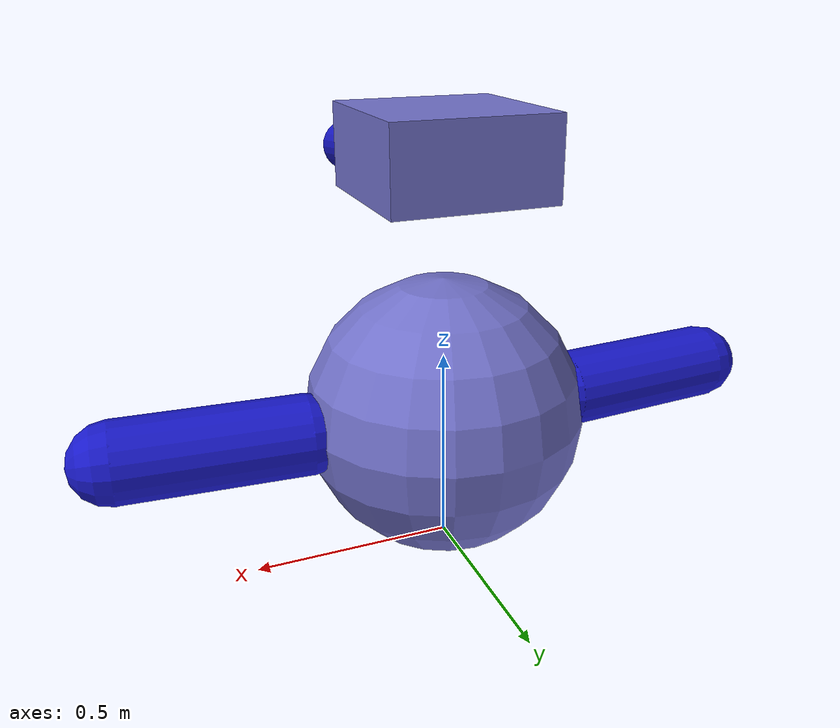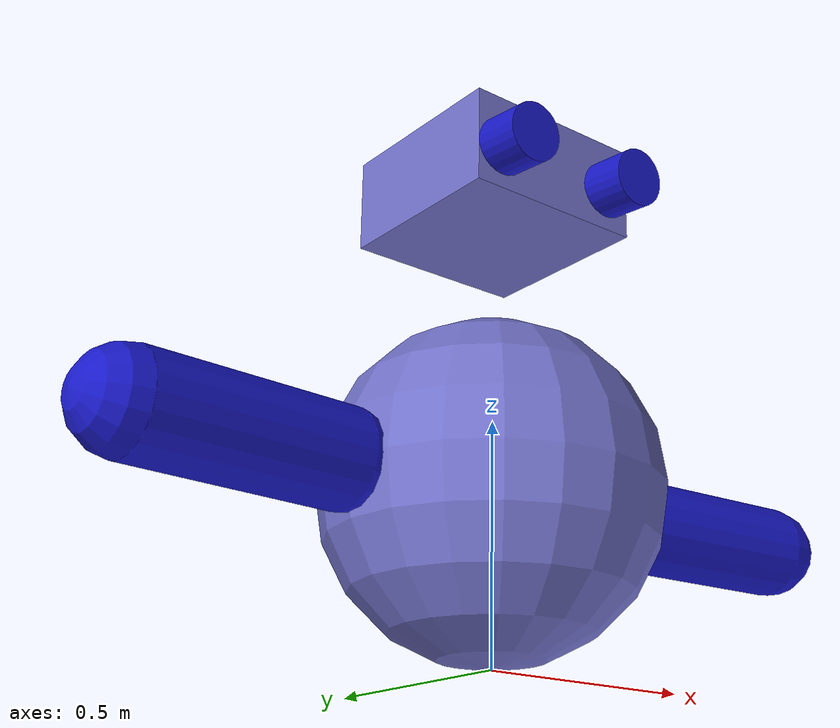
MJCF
<mujoco model="boxhead">
  <compiler boundmass="1e-05" boundinertia="1e-11" coordinate="local" angle="radian" eulerseq="xyz"/>
  <option timestep="0.005" cone="elliptic" noslip_iterations="5" noslip_tolerance="0.0"/>
  <size njmax="800" nconmax="800"/>
  <visual>
    <headlight ambient="0.40000000000000002 0.40000000000000002 0.40000000000000002" diffuse="0.80000000000000004 0.80000000000000004 0.80000000000000004" specular="0.10000000000000001 0.10000000000000001 0.10000000000000001"/>
    <map znear="0.0005"/>
    <scale forcewidth="0.01" contactwidth="0.06" contactheight="0.01" jointwidth="0.01" framelength="0.3" framewidth="0.01"/>
  </visual>
  <default>
    <default class="/">
      <mesh scale="0.01 0.01 0.01"/>
      <geom contype="1" conaffinity="1" condim="4" friction="0.5 0.02 0.02"/>
      <default class="root">
        <joint pos="0 0 0" limited="false" stiffness="0.0" armature="0.0" damping="0.0"/>
      </default>
    </default>
  </default>
  <asset>
    <material name="head_material" class="/" texture="ball_body"/>
    <texture name="ball_body" type="cube" builtin="checker" rgb1="0.10000000000000001 0.10000000000000001 0.80000000000000004" rgb2="0.80000000000000004 0.80000000000000004 0.80000000000000004" width="100" height="100"/>
    <material name="ball_body" class="/" texture="ball_body"/>
  </asset>
  <worldbody>
    <body name="head_body" pos="0 0 1" quat="1 0 0 -1">
      <camera name="float_far" class="/" fovy="90.0" pos="-4 0 2" xyaxes="0 -1 0 0.5 0 1"/>
      <body name="egocentric_camera" pos="0.1 0 0.2" xyaxes="0 -1 0 0.0995 0 0.995">
        <inertial pos="0 0 0" mass="1.0" diaginertia="1 1 1"/>
        <geom name="eye_l" class="/" type="cylinder" contype="0" conaffinity="0" size="0.06 0.05" rgba="0.1 0.1 0.8 1" mass="0.0" pos="-0.14 -0.2 -0.171"/>
        <geom name="eye_r" class="/" type="cylinder" contype="0" conaffinity="0" size="0.06 0.05" rgba="0.1 0.1 0.8 1" mass="0.0" pos="0.14 -0.2 -0.171"/>
        <camera name="egocentric" class="/" fovy="80.0"/>
      </body>
      <camera name="tracking" class="/" mode="trackcom" pos="1.5 1.5 0.69999999999999996" xyaxes="-1 1 0 -1 -1 4"/>
      <joint name="steer" class="root" type="hinge" axis="0 0 -1" damping="4.0"/>
      <geom name="top_down_cam_box" class="/" type="box" contype="0" conaffinity="0" group="5" size="1 1 0.10000000000000001" material="head_material" mass="0.0" pos="0 0 2"/>
      <geom name="head" class="/" type="box" contype="1" conaffinity="1" size="0.20000000000000001 0.20000000000000001 0.10000000000000001" material="head_material" mass="20.0" pos="0 0 0"/>
      <site name="torso_site" class="/" group="4" rgba="1 0 0 1" size="0.050000000000000003" pos="0 0 0"/>
      <body name="torso" pos="0 0 0.050000000000000003">
        <joint name="kick" class="/" type="slide" axis="0 0 -1" limited="true" solimplimit="0.94999999999999996 0.98999999999999999 0.001" stiffness="0.0" range="0 0.40000000000000002" springref="-0.4" damping="100.0"/>
        <geom name="arm_l" class="/" type="capsule" size="0.10000000000000001" rgba="0.10000000000000001 0.10000000000000001 0.80000000000000004 1" density="10.0" fromto="0 0.34999999999999998 -0.69999999999999996 0.029999999999999999 0.80000000000000004 -0.69999999999999996"/>
        <geom name="arm_r" class="/" type="capsule" size="0.10000000000000001" rgba="0.10000000000000001 0.10000000000000001 0.80000000000000004 1" density="10.0" fromto="0 -0.34999999999999998 -0.69999999999999996 0.029999999999999999 -0.80000000000000004 -0.69999999999999996"/>
        <body name="ball" pos="0 0 -0.69999999999999996">
          <joint name="roll" class="/" type="hinge" axis="0 1 0" damping="2.0"/>
          <geom name="shell" class="/" type="sphere" condim="4" size="0.34999999999999998" material="ball_body" friction="0.5 0.02 0.02" density="100.0"/>
        </body>
      </body>
    </body>
  </worldbody>
  <actuator>
    <general name="roll" class="/" ctrllimited="true" ctrlrange="-1 1" gear="-60" joint="roll" biastype="affine" biasprm="0"/>
    <motor name="steer" class="/" ctrllimited="true" ctrlrange="-1 1" gear="55" joint="steer"/>
  </actuator>
  <sensor>
    <velocimeter name="sensor_torso_vel" site="torso_site"/>
    <gyro name="sensor_torso_gyro" site="torso_site"/>
    <accelerometer name="sensor_torso_accel" site="torso_site"/>
  </sensor>
</mujoco>
